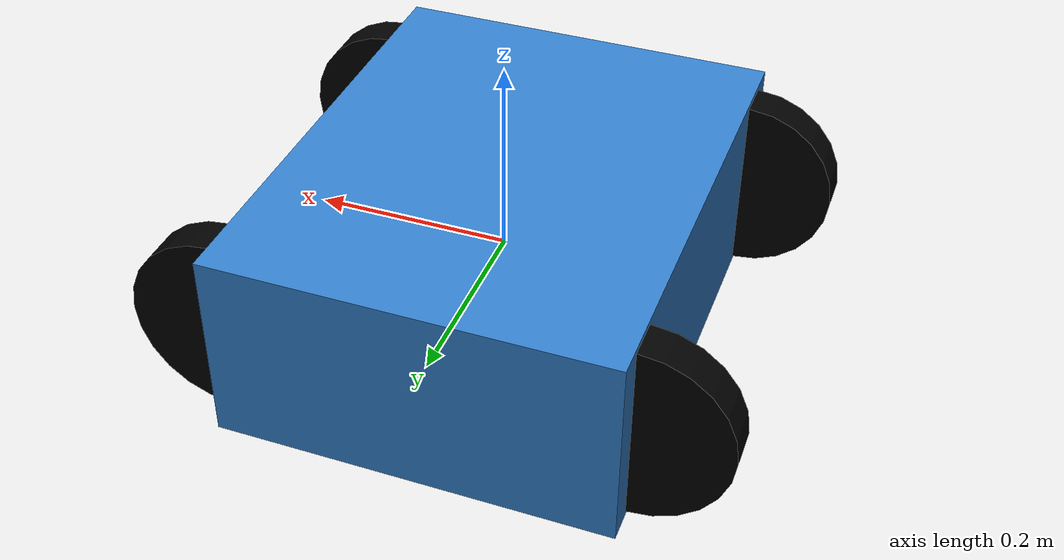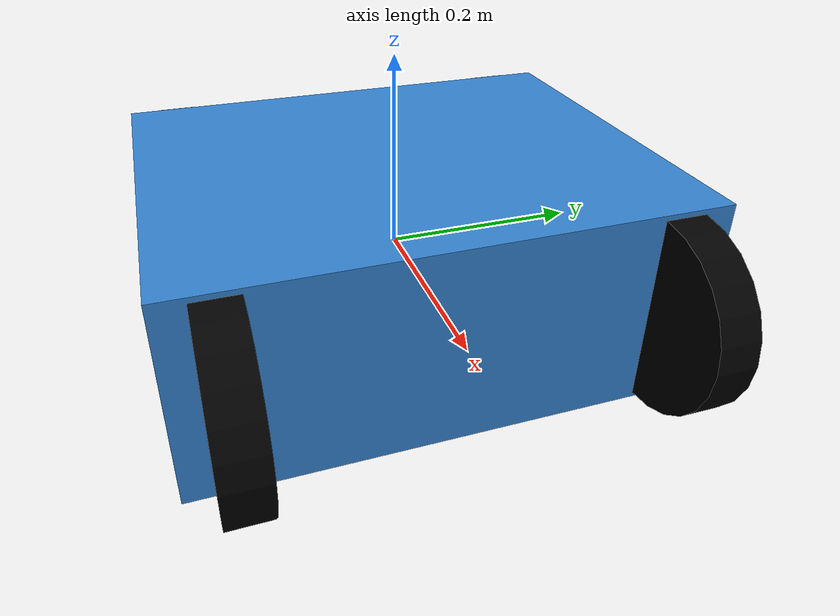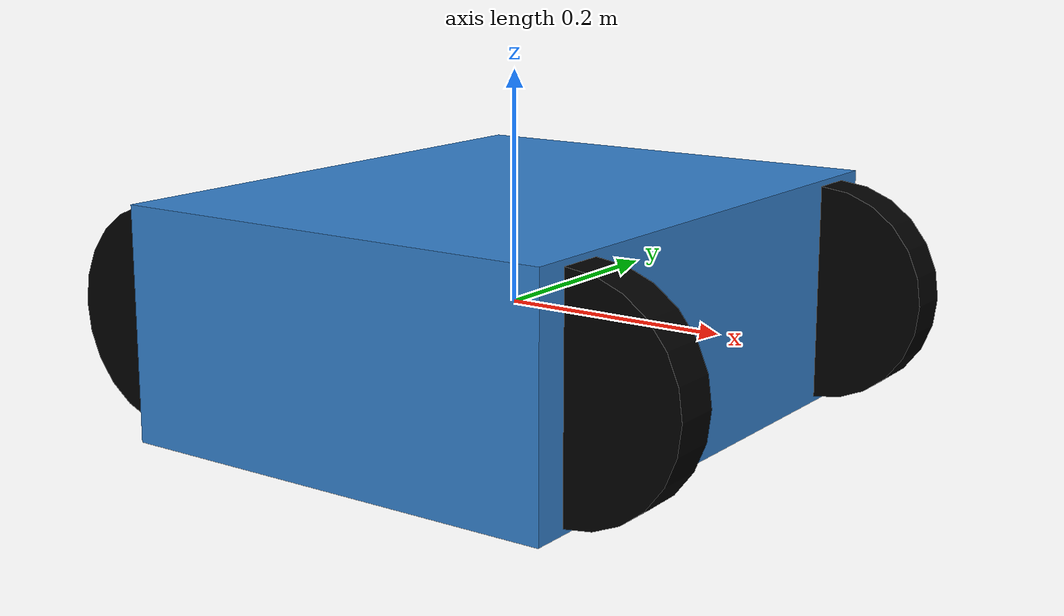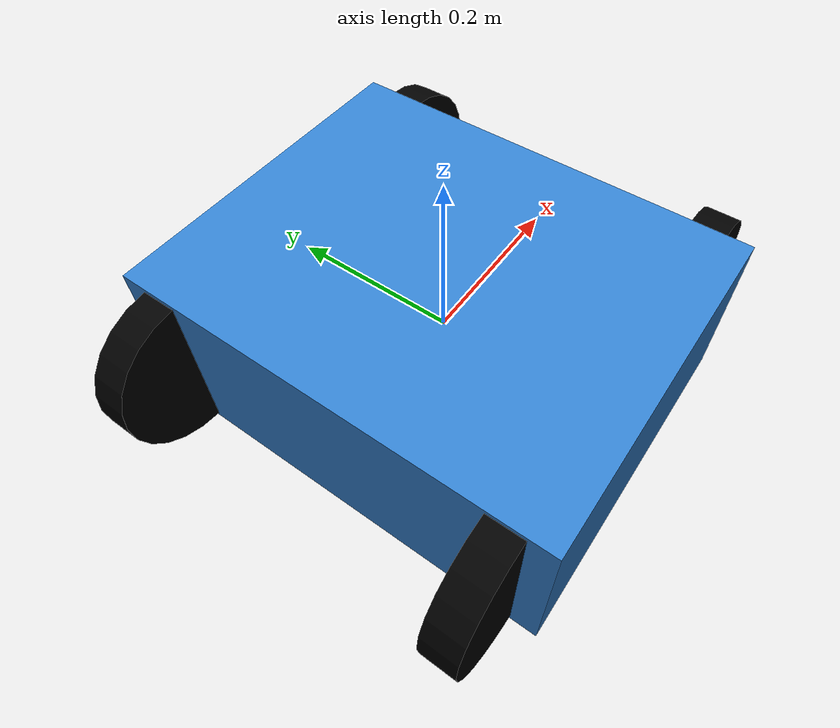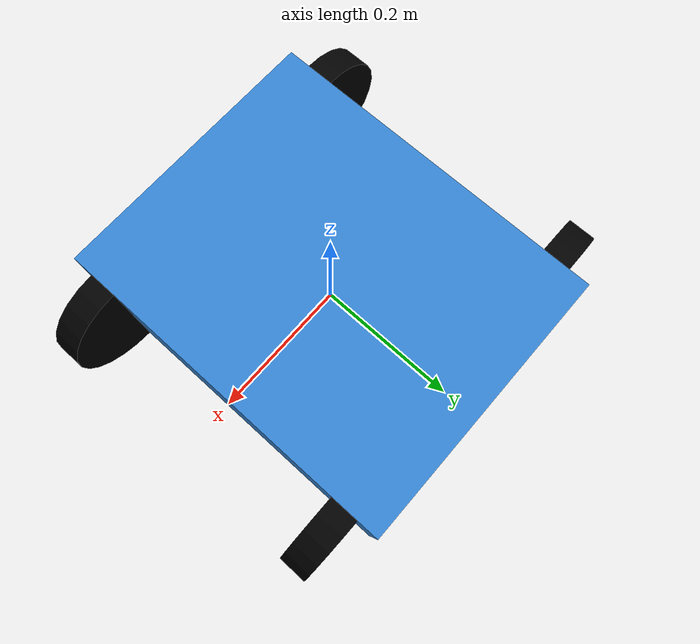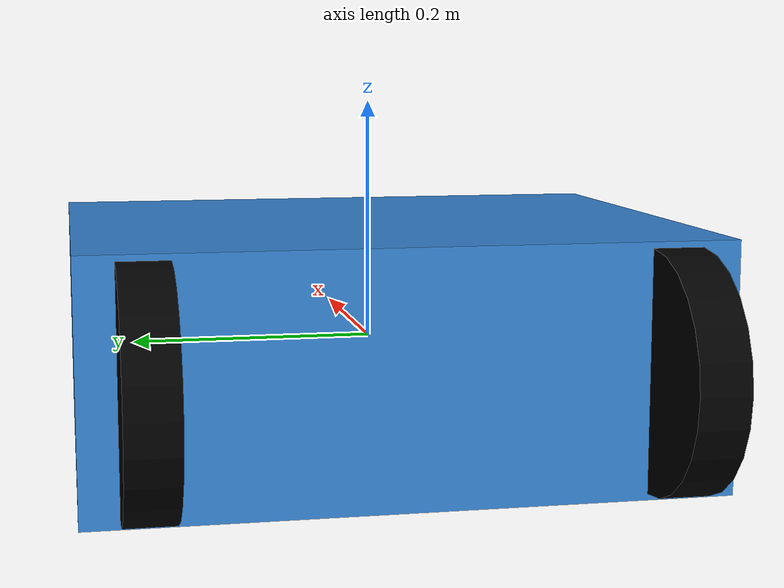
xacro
<?xml version="1.0"?>
<robot xmlns:xacro="http://www.ros.org/wiki/xacro" name="p3at">

 <xacro:property name="wheel_radius" value="0.095"/>
 <xacro:property name="wheel_thickness" value="0.04"/>
 <xacro:property name="wheel_separation" value="0.4"/>
 <xacro:property name="wheel_joint_offset_y" value="0.2"/>
 <xacro:property name="wheel_joint_offset_x" value="0.2"/>

 <xacro:macro name="wheel" params="prefix parent_link x_loc y_loc">
 <link name="${prefix}_wheel_link">
  <visual>
   <geometry>
     <cylinder radius="${wheel_radius}" length="${wheel_thickness}"/>
   </geometry>
   <material name="black">
     <color rgba="0.0 0.0 0.0 1.0"/>
   </material>
  </visual>
 <collision>
  <geometry>
    <cylinder radius="${wheel_radius}" length="${wheel_thickness}"/>
  </geometry>
 </collision>
 <inertial>
   <mass value="0.1"/>
   <inertia ixx="0.001" ixy="0.0" ixz="0.0" iyy="0.001" iyz="0.0" izz="0.001"/>
 </inertial>
 </link>

 <joint name="${prefix}_wheel_joint" type="continuous">
 <parent link="${parent_link}"/>
 <child link="${prefix}_wheel_link"/>
 <origin xyz="${x_loc} ${y_loc} 0" rpy="1.570795 0 0"/>
 <axis xyz="0 1 0"/>
 </joint>
 </xacro:macro>
 <link name="base_link">
 <visual>
 <geometry>
 <box size="${wheel_separation} ${wheel_separation + 0.1} 0.2"/>
 </geometry>
 <material name="blue">
 <color rgba="0.2 0.5 0.8 1.0"/>
 </material>
 </visual>
 <collision>
 <geometry>
 <box size="${wheel_separation} ${wheel_separation + 0.1} 0.2"/>
 </geometry>
 </collision>
 <inertial>
 <mass value="10"/>
 <inertia ixx="0.1" ixy="0.0" ixz="0.0" iyy="0.1" iyz="0.0" izz="0.1"/>
 </inertial>
  </link>

  <xacro:wheel prefix="front_right" parent_link="base_link" x_loc="${wheel_joint_offset_x}"
y_loc="${-wheel_joint_offset_y}"/>
 <xacro:wheel prefix="front_left" parent_link="base_link" x_loc="${wheel_joint_offset_x}"
y_loc="${wheel_joint_offset_y}"/>
 <xacro:wheel prefix="rear_right" parent_link="base_link" x_loc="${-wheel_joint_offset_x}"
y_loc="${-wheel_joint_offset_y}"/>
 <xacro:wheel prefix="rear_left" parent_link="base_link" x_loc="${-wheel_joint_offset_x}"
y_loc="${wheel_joint_offset_y}"/>
 <gazebo>
 <plugin name="gazebo_ros_diff_drive" filename="libgazebo_ros_diff_drive.so">
 <ros>
 <namespace>${robot_name}</namespace>
 </ros>
 <left_joint>rear_left_wheel_joint</left_joint>
 <right_joint>rear_right_wheel_joint</right_joint>
 <wheel_separation>0.4</wheel_separation>
 <wheel_diameter>0.19</wheel_diameter>
 <topicName>cmd_vel</topicName>
 <odometryTopic>odom</odometryTopic>
 <odometryFrame>odom</odometryFrame>
 <robotBaseFrame>base_link</robotBaseFrame>
 </plugin>
 </gazebo>
</robot>
